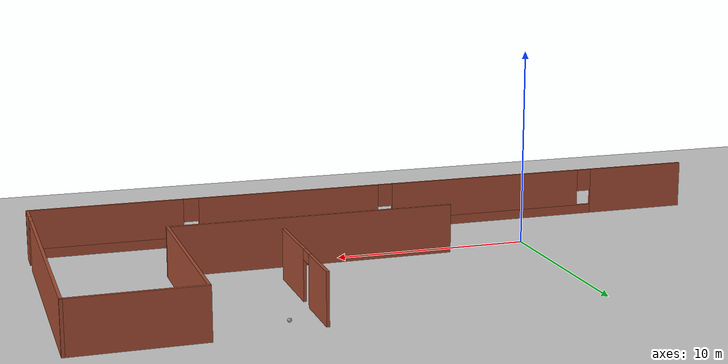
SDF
<sdf version="1.6">
 <world name="default">
  <model name="ground_plane">
   <static>1</static>
   <link name="link">
    <collision name="collision">
     <geometry><plane><normal>0 0 1</normal><size>100 100</size></plane></geometry>
     <surface><friction><ode><mu>100</mu><mu2>50</mu2></ode></friction></surface>
    </collision>
    <visual name="visual">
     <cast_shadows>0</cast_shadows>
     <geometry><plane><normal>0 0 1</normal><size>100 100</size></plane></geometry>
     <material>
      <script><uri>file://media/materials/scripts/gazebo.material</uri><name>Gazebo/Grey</name></script>
     </material>
    </visual>
   </link>
  </model>
  <model name="apartment_model">
   <link name="Wall_16">
    <pose>6.925 3.475 0 0 -0 1.5708</pose>
    <visual name="Wall_16_Visual_0">
     <pose>-1.87856 0 1.25 0 -0 0</pose>
     <geometry><box><size>3.74288 0.15 2.5</size></box></geometry>
     <material>
      <script><uri>file://media/materials/scripts/gazebo.material</uri><name>Gazebo/Bricks</name></script>
      <ambient>1 1 1 1</ambient>
      <diffuse>1 1 1 1</diffuse>
      <specular>0.2 0.2 0.2 1</specular>
      <emissive>0 0 0 1</emissive>
     </material>
    </visual>
    <visual name="Wall_16_Visual_1">
     <pose>2.32144 0 1.25 0 -0 0</pose>
     <geometry><box><size>2.85712 0.15 2.5</size></box></geometry>
     <material>
      <script><uri>file://media/materials/scripts/gazebo.material</uri><name>Gazebo/Bricks</name></script>
      <ambient>1 1 1 1</ambient>
      <diffuse>1 1 1 1</diffuse>
      <specular>0.2 0.2 0.2 1</specular>
      <emissive>0 0 0 1</emissive>
     </material>
    </visual>
    <visual name="Wall_16_Visual_2">
     <pose>0.442879 0 2.25 0 -0 0</pose>
     <geometry><box><size>0.9 0.15 0.5</size></box></geometry>
     <material>
      <script><uri>file://media/materials/scripts/gazebo.material</uri><name>Gazebo/Bricks</name></script>
      <ambient>1 1 1 1</ambient>
      <diffuse>1 1 1 1</diffuse>
      <specular>0.2 0.2 0.2 1</specular>
      <emissive>0 0 0 1</emissive>
     </material>
    </visual>
    <collision name="Wall_16_Collision_0">
     <pose>-1.87856 0 1.25 0 -0 0</pose>
     <geometry><box><size>3.74288 0.15 2.5</size></box></geometry>
     <surface>
      <friction>
       <ode><mu>1</mu><mu2>1</mu2><fdir1>0 0 0</fdir1><slip1>0</slip1><slip2>0</slip2></ode>
       <torsional>
        <coefficient>1</coefficient>
        <patch_radius>0</patch_radius>
        <surface_radius>0</surface_radius>
        <use_patch_radius>1</use_patch_radius>
        <ode><slip>0</slip></ode>
       </torsional>
      </friction>
      <bounce><restitution_coefficient>0</restitution_coefficient><threshold>1e+06</threshold></bounce>
      <contact>
       <collide_without_contact>0</collide_without_contact>
       <collide_without_contact_bitmask>1</collide_without_contact_bitmask>
       <collide_bitmask>1</collide_bitmask>
       <ode>
        <soft_cfm>0</soft_cfm>
        <soft_erp>0.2</soft_erp>
        <kp>1e+13</kp>
        <kd>1</kd>
        <max_vel>0.01</max_vel>
        <min_depth>0</min_depth>
       </ode>
       <bullet>
        <split_impulse>1</split_impulse>
        <split_impulse_penetration_threshold>-0.01</split_impulse_penetration_threshold>
        <soft_cfm>0</soft_cfm>
        <soft_erp>0.2</soft_erp>
        <kp>1e+13</kp>
        <kd>1</kd>
       </bullet>
      </contact>
     </surface>
    </collision>
    <collision name="Wall_16_Collision_1">
     <pose>2.32144 0 1.25 0 -0 0</pose>
     <geometry><box><size>2.85712 0.15 2.5</size></box></geometry>
     <surface>
      <friction>
       <ode><mu>1</mu><mu2>1</mu2><fdir1>0 0 0</fdir1><slip1>0</slip1><slip2>0</slip2></ode>
       <torsional>
        <coefficient>1</coefficient>
        <patch_radius>0</patch_radius>
        <surface_radius>0</surface_radius>
        <use_patch_radius>1</use_patch_radius>
        <ode><slip>0</slip></ode>
       </torsional>
      </friction>
      <bounce><restitution_coefficient>0</restitution_coefficient><threshold>1e+06</threshold></bounce>
      <contact>
       <collide_without_contact>0</collide_without_contact>
       <collide_without_contact_bitmask>1</collide_without_contact_bitmask>
       <collide_bitmask>1</collide_bitmask>
       <ode>
        <soft_cfm>0</soft_cfm>
        <soft_erp>0.2</soft_erp>
        <kp>1e+13</kp>
        <kd>1</kd>
        <max_vel>0.01</max_vel>
        <min_depth>0</min_depth>
       </ode>
       <bullet>
        <split_impulse>1</split_impulse>
        <split_impulse_penetration_threshold>-0.01</split_impulse_penetration_threshold>
        <soft_cfm>0</soft_cfm>
        <soft_erp>0.2</soft_erp>
        <kp>1e+13</kp>
        <kd>1</kd>
       </bullet>
      </contact>
     </surface>
    </collision>
    <collision name="Wall_16_Collision_2">
     <pose>0.442879 0 2.25 0 -0 0</pose>
     <geometry><box><size>0.9 0.15 0.5</size></box></geometry>
     <surface>
      <friction>
       <ode><mu>1</mu><mu2>1</mu2><fdir1>0 0 0</fdir1><slip1>0</slip1><slip2>0</slip2></ode>
       <torsional>
        <coefficient>1</coefficient>
        <patch_radius>0</patch_radius>
        <surface_radius>0</surface_radius>
        <use_patch_radius>1</use_patch_radius>
        <ode><slip>0</slip></ode>
       </torsional>
      </friction>
      <bounce><restitution_coefficient>0</restitution_coefficient><threshold>1e+06</threshold></bounce>
      <contact>
       <collide_without_contact>0</collide_without_contact>
       <collide_without_contact_bitmask>1</collide_without_contact_bitmask>
       <collide_bitmask>1</collide_bitmask>
       <ode>
        <soft_cfm>0</soft_cfm>
        <soft_erp>0.2</soft_erp>
        <kp>1e+13</kp>
        <kd>1</kd>
        <max_vel>0.01</max_vel>
        <min_depth>0</min_depth>
       </ode>
       <bullet>
        <split_impulse>1</split_impulse>
        <split_impulse_penetration_threshold>-0.01</split_impulse_penetration_threshold>
        <soft_cfm>0</soft_cfm>
        <soft_erp>0.2</soft_erp>
        <kp>1e+13</kp>
        <kd>1</kd>
       </bullet>
      </contact>
     </surface>
    </collision>
   </link>
   <link name="Wall_21">
    <pose>18.225 0 0 0 -0 1.5708</pose>
    <visual name="Wall_21_Visual_0">
     <pose>-6.96408 0 1.25 0 -0 0</pose>
     <geometry><box><size>1.32185 0.15 2.5</size></box></geometry>
     <material>
      <script><uri>file://media/materials/scripts/gazebo.material</uri><name>Gazebo/Bricks</name></script>
      <ambient>1 1 1 1</ambient>
      <diffuse>1 1 1 1</diffuse>
      <specular>0.2 0.2 0.2 1</specular>
      <emissive>0 0 0 1</emissive>
     </material>
    </visual>
    <visual name="Wall_21_Visual_2">
     <pose>-5.85315 0 2.25 0 -0 0</pose>
     <geometry><box><size>0.9 0.15 0.5</size></box></geometry>
     <material>
      <script><uri>file://media/materials/scripts/gazebo.material</uri><name>Gazebo/Bricks</name></script>
      <ambient>1 1 1 1</ambient>
      <diffuse>1 1 1 1</diffuse>
      <specular>0.2 0.2 0.2 1</specular>
      <emissive>0 0 0 1</emissive>
     </material>
    </visual>
    <visual name="Wall_21_Visual_1">
     <pose>1.11092 0 1.25 0 -0 0</pose>
     <geometry><box><size>13.0282 0.15 2.5</size></box></geometry>
     <material>
      <script><uri>file://media/materials/scripts/gazebo.material</uri><name>Gazebo/Bricks</name></script>
      <ambient>1 1 1 1</ambient>
      <diffuse>1 1 1 1</diffuse>
      <specular>0.2 0.2 0.2 1</specular>
      <emissive>0 0 0 1</emissive>
     </material>
    </visual>
    <collision name="Wall_21_Collision_0">
     <pose>-6.96408 0 1.25 0 -0 0</pose>
     <geometry><box><size>1.32185 0.15 2.5</size></box></geometry>
     <surface>
      <friction>
       <ode><mu>1</mu><mu2>1</mu2><fdir1>0 0 0</fdir1><slip1>0</slip1><slip2>0</slip2></ode>
       <torsional>
        <coefficient>1</coefficient>
        <patch_radius>0</patch_radius>
        <surface_radius>0</surface_radius>
        <use_patch_radius>1</use_patch_radius>
        <ode><slip>0</slip></ode>
       </torsional>
      </friction>
      <bounce><restitution_coefficient>0</restitution_coefficient><threshold>1e+06</threshold></bounce>
      <contact>
       <collide_without_contact>0</collide_without_contact>
       <collide_without_contact_bitmask>1</collide_without_contact_bitmask>
       <collide_bitmask>1</collide_bitmask>
       <ode>
        <soft_cfm>0</soft_cfm>
        <soft_erp>0.2</soft_erp>
        <kp>1e+13</kp>
        <kd>1</kd>
        <max_vel>0.01</max_vel>
        <min_depth>0</min_depth>
       </ode>
       <bullet>
        <split_impulse>1</split_impulse>
        <split_impulse_penetration_threshold>-0.01</split_impulse_penetration_threshold>
        <soft_cfm>0</soft_cfm>
        <soft_erp>0.2</soft_erp>
        <kp>1e+13</kp>
        <kd>1</kd>
       </bullet>
      </contact>
     </surface>
    </collision>
    <collision name="Wall_21_Collision_1">
     <pose>1.11092 0 1.25 0 -0 0</pose>
     <geometry><box><size>13.0282 0.15 2.5</size></box></geometry>
     <surface>
      <friction>
       <ode><mu>1</mu><mu2>1</mu2><fdir1>0 0 0</fdir1><slip1>0</slip1><slip2>0</slip2></ode>
       <torsional>
        <coefficient>1</coefficient>
        <patch_radius>0</patch_radius>
        <surface_radius>0</surface_radius>
        <use_patch_radius>1</use_patch_radius>
        <ode><slip>0</slip></ode>
       </torsional>
      </friction>
      <bounce><restitution_coefficient>0</restitution_coefficient><threshold>1e+06</threshold></bounce>
      <contact>
       <collide_without_contact>0</collide_without_contact>
       <collide_without_contact_bitmask>1</collide_without_contact_bitmask>
       <collide_bitmask>1</collide_bitmask>
       <ode>
        <soft_cfm>0</soft_cfm>
        <soft_erp>0.2</soft_erp>
        <kp>1e+13</kp>
        <kd>1</kd>
        <max_vel>0.01</max_vel>
        <min_depth>0</min_depth>
       </ode>
       <bullet>
        <split_impulse>1</split_impulse>
        <split_impulse_penetration_threshold>-0.01</split_impulse_penetration_threshold>
        <soft_cfm>0</soft_cfm>
        <soft_erp>0.2</soft_erp>
        <kp>1e+13</kp>
        <kd>1</kd>
       </bullet>
      </contact>
     </surface>
    </collision>
    <collision name="Wall_21_Collision_2">
     <pose>-5.85315 0 2.25 0 -0 0</pose>
     <geometry><box><size>0.9 0.15 0.5</size></box></geometry>
     <surface>
      <friction>
       <ode><mu>1</mu><mu2>1</mu2><fdir1>0 0 0</fdir1><slip1>0</slip1><slip2>0</slip2></ode>
       <torsional>
        <coefficient>1</coefficient>
        <patch_radius>0</patch_radius>
        <surface_radius>0</surface_radius>
        <use_patch_radius>1</use_patch_radius>
        <ode><slip>0</slip></ode>
       </torsional>
      </friction>
      <bounce><restitution_coefficient>0</restitution_coefficient><threshold>1e+06</threshold></bounce>
      <contact>
       <collide_without_contact>0</collide_without_contact>
       <collide_without_contact_bitmask>1</collide_without_contact_bitmask>
       <collide_bitmask>1</collide_bitmask>
       <ode>
        <soft_cfm>0</soft_cfm>
        <soft_erp>0.2</soft_erp>
        <kp>1e+13</kp>
        <kd>1</kd>
        <max_vel>0.01</max_vel>
        <min_depth>0</min_depth>
       </ode>
       <bullet>
        <split_impulse>1</split_impulse>
        <split_impulse_penetration_threshold>-0.01</split_impulse_penetration_threshold>
        <soft_cfm>0</soft_cfm>
        <soft_erp>0.2</soft_erp>
        <kp>1e+13</kp>
        <kd>1</kd>
       </bullet>
      </contact>
     </surface>
    </collision>
   </link>
   <link name="Wall_22">
    <pose>15.175 7.55 0 0 -0 3.14159</pose>
    <visual name="Wall_22_Visual">
     <pose>0 0 1.25 0 -0 0</pose>
     <geometry><box><size>6.25 0.15 2.5</size></box></geometry>
     <material>
      <script><uri>file://media/materials/scripts/gazebo.material</uri><name>Gazebo/Bricks</name></script>
      <ambient>1 1 1 1</ambient>
      <diffuse>1 1 1 1</diffuse>
      <specular>0.2 0.2 0.2 1</specular>
      <emissive>0 0 0 1</emissive>
     </material>
    </visual>
    <collision name="Wall_22_Collision">
     <pose>0 0 1.25 0 -0 0</pose>
     <geometry><box><size>6.25 0.15 2.5</size></box></geometry>
     <surface>
      <friction>
       <ode><mu>1</mu><mu2>1</mu2><fdir1>0 0 0</fdir1><slip1>0</slip1><slip2>0</slip2></ode>
       <torsional>
        <coefficient>1</coefficient>
        <patch_radius>0</patch_radius>
        <surface_radius>0</surface_radius>
        <use_patch_radius>1</use_patch_radius>
        <ode><slip>0</slip></ode>
       </torsional>
      </friction>
      <bounce><restitution_coefficient>0</restitution_coefficient><threshold>1e+06</threshold></bounce>
      <contact>
       <collide_without_contact>0</collide_without_contact>
       <collide_without_contact_bitmask>1</collide_without_contact_bitmask>
       <collide_bitmask>1</collide_bitmask>
       <ode>
        <soft_cfm>0</soft_cfm>
        <soft_erp>0.2</soft_erp>
        <kp>1e+13</kp>
        <kd>1</kd>
        <max_vel>0.01</max_vel>
        <min_depth>0</min_depth>
       </ode>
       <bullet>
        <split_impulse>1</split_impulse>
        <split_impulse_penetration_threshold>-0.01</split_impulse_penetration_threshold>
        <soft_cfm>0</soft_cfm>
        <soft_erp>0.2</soft_erp>
        <kp>1e+13</kp>
        <kd>1</kd>
       </bullet>
      </contact>
     </surface>
    </collision>
   </link>
   <link name="Wall_25">
    <pose>12.125 2.625 0 0 0 -1.5708</pose>
    <visual name="Wall_25_Visual">
     <pose>0 0 1.25 0 -0 0</pose>
     <geometry><box><size>10 0.15 2.5</size></box></geometry>
     <material>
      <script><uri>file://media/materials/scripts/gazebo.material</uri><name>Gazebo/Bricks</name></script>
      <ambient>1 1 1 1</ambient>
      <diffuse>1 1 1 1</diffuse>
      <specular>0.2 0.2 0.2 1</specular>
      <emissive>0 0 0 1</emissive>
     </material>
    </visual>
    <collision name="Wall_25_Collision">
     <pose>0 0 1.25 0 -0 0</pose>
     <geometry><box><size>10 0.15 2.5</size></box></geometry>
     <surface>
      <friction>
       <ode><mu>1</mu><mu2>1</mu2><fdir1>0 0 0</fdir1><slip1>0</slip1><slip2>0</slip2></ode>
       <torsional>
        <coefficient>1</coefficient>
        <patch_radius>0</patch_radius>
        <surface_radius>0</surface_radius>
        <use_patch_radius>1</use_patch_radius>
        <ode><slip>0</slip></ode>
       </torsional>
      </friction>
      <bounce><restitution_coefficient>0</restitution_coefficient><threshold>1e+06</threshold></bounce>
      <contact>
       <collide_without_contact>0</collide_without_contact>
       <collide_without_contact_bitmask>1</collide_without_contact_bitmask>
       <collide_bitmask>1</collide_bitmask>
       <ode>
        <soft_cfm>0</soft_cfm>
        <soft_erp>0.2</soft_erp>
        <kp>1e+13</kp>
        <kd>1</kd>
        <max_vel>0.01</max_vel>
        <min_depth>0</min_depth>
       </ode>
       <bullet>
        <split_impulse>1</split_impulse>
        <split_impulse_penetration_threshold>-0.01</split_impulse_penetration_threshold>
        <soft_cfm>0</soft_cfm>
        <soft_erp>0.2</soft_erp>
        <kp>1e+13</kp>
        <kd>1</kd>
       </bullet>
      </contact>
     </surface>
    </collision>
   </link>
   <link name="Wall_26">
    <pose>4.95 -2.3 0 0 -0 3.14159</pose>
    <visual name="Wall_26_Visual">
     <pose>0 0 1.25 0 -0 0</pose>
     <geometry><box><size>14.5 0.15 2.5</size></box></geometry>
     <material>
      <script><uri>file://media/materials/scripts/gazebo.material</uri><name>Gazebo/Bricks</name></script>
      <ambient>1 1 1 1</ambient>
      <diffuse>1 1 1 1</diffuse>
      <specular>0.2 0.2 0.2 1</specular>
      <emissive>0 0 0 1</emissive>
     </material>
    </visual>
    <collision name="Wall_26_Collision">
     <pose>0 0 1.25 0 -0 0</pose>
     <geometry><box><size>14.5 0.15 2.5</size></box></geometry>
     <surface>
      <friction>
       <ode><mu>1</mu><mu2>1</mu2><fdir1>0 0 0</fdir1><slip1>0</slip1><slip2>0</slip2></ode>
       <torsional>
        <coefficient>1</coefficient>
        <patch_radius>0</patch_radius>
        <surface_radius>0</surface_radius>
        <use_patch_radius>1</use_patch_radius>
        <ode><slip>0</slip></ode>
       </torsional>
      </friction>
      <bounce><restitution_coefficient>0</restitution_coefficient><threshold>1e+06</threshold></bounce>
      <contact>
       <collide_without_contact>0</collide_without_contact>
       <collide_without_contact_bitmask>1</collide_without_contact_bitmask>
       <collide_bitmask>1</collide_bitmask>
       <ode>
        <soft_cfm>0</soft_cfm>
        <soft_erp>0.2</soft_erp>
        <kp>1e+13</kp>
        <kd>1</kd>
        <max_vel>0.01</max_vel>
        <min_depth>0</min_depth>
       </ode>
       <bullet>
        <split_impulse>1</split_impulse>
        <split_impulse_penetration_threshold>-0.01</split_impulse_penetration_threshold>
        <soft_cfm>0</soft_cfm>
        <soft_erp>0.2</soft_erp>
        <kp>1e+13</kp>
        <kd>1</kd>
       </bullet>
      </contact>
     </surface>
    </collision>
   </link>
   <link name="Wall_29">
    <pose>0 -7.55 0 0 -0 0</pose>
    <visual name="Wall_29_Visual_0">
     <pose>-15.4905 0 1.25 0 -0 0</pose>
     <geometry><box><size>5.61904 0.15 2.5</size></box></geometry>
     <material>
      <script><uri>file://media/materials/scripts/gazebo.material</uri><name>Gazebo/Bricks</name></script>
      <ambient>1 1 1 1</ambient>
      <diffuse>1 1 1 1</diffuse>
      <specular>0.2 0.2 0.2 1</specular>
      <emissive>0 0 0 1</emissive>
     </material>
    </visual>
    <visual name="Wall_29_Visual_1">
     <pose>2.80952 0 0.25 0 -0 0</pose>
     <geometry><box><size>30.981 0.15 0.5</size></box></geometry>
     <material>
      <script><uri>file://media/materials/scripts/gazebo.material</uri><name>Gazebo/Bricks</name></script>
      <ambient>1 1 1 1</ambient>
      <diffuse>1 1 1 1</diffuse>
      <specular>0.2 0.2 0.2 1</specular>
      <emissive>0 0 0 1</emissive>
     </material>
    </visual>
    <visual name="Wall_29_Visual_3">
     <pose>4.73149 0 1.5 0 -0 0</pose>
     <geometry><box><size>9.72127 0.15 2</size></box></geometry>
     <material>
      <script><uri>file://media/materials/scripts/gazebo.material</uri><name>Gazebo/Bricks</name></script>
      <ambient>1 1 1 1</ambient>
      <diffuse>1 1 1 1</diffuse>
      <specular>0.2 0.2 0.2 1</specular>
      <emissive>0 0 0 1</emissive>
     </material>
    </visual>
    <visual name="Wall_29_Visual_2">
     <pose>-6.40505 0 1.5 0 -0 0</pose>
     <geometry><box><size>10.9518 0.15 2</size></box></geometry>
     <material>
      <script><uri>file://media/materials/scripts/gazebo.material</uri><name>Gazebo/Bricks</name></script>
      <ambient>1 1 1 1</ambient>
      <diffuse>1 1 1 1</diffuse>
      <specular>0.2 0.2 0.2 1</specular>
      <emissive>0 0 0 1</emissive>
     </material>
    </visual>
    <visual name="Wall_29_Visual_4">
     <pose>14.3461 0 1.5 0 -0 0</pose>
     <geometry><box><size>7.90787 0.15 2</size></box></geometry>
     <material>
      <script><uri>file://media/materials/scripts/gazebo.material</uri><name>Gazebo/Bricks</name></script>
      <ambient>1 1 1 1</ambient>
      <diffuse>1 1 1 1</diffuse>
      <specular>0.2 0.2 0.2 1</specular>
      <emissive>0 0 0 1</emissive>
     </material>
    </visual>
    <visual name="Wall_29_Visual_5">
     <pose>-12.281 0 1.9 0 -0 0</pose>
     <geometry><box><size>0.8 0.15 1.2</size></box></geometry>
     <material>
      <script><uri>file://media/materials/scripts/gazebo.material</uri><name>Gazebo/Bricks</name></script>
      <ambient>1 1 1 1</ambient>
      <diffuse>1 1 1 1</diffuse>
      <specular>0.2 0.2 0.2 1</specular>
      <emissive>0 0 0 1</emissive>
     </material>
    </visual>
    <visual name="Wall_29_Visual_6">
     <pose>-0.529139 0 1.9 0 -0 0</pose>
     <geometry><box><size>0.8 0.15 1.2</size></box></geometry>
     <material>
      <script><uri>file://media/materials/scripts/gazebo.material</uri><name>Gazebo/Bricks</name></script>
      <ambient>1 1 1 1</ambient>
      <diffuse>1 1 1 1</diffuse>
      <specular>0.2 0.2 0.2 1</specular>
      <emissive>0 0 0 1</emissive>
     </material>
    </visual>
    <visual name="Wall_29_Visual_7">
     <pose>9.99213 0 1.9 0 -0 0</pose>
     <geometry><box><size>0.8 0.15 1.2</size></box></geometry>
     <material>
      <script><uri>file://media/materials/scripts/gazebo.material</uri><name>Gazebo/Bricks</name></script>
      <ambient>1 1 1 1</ambient>
      <diffuse>1 1 1 1</diffuse>
      <specular>0.2 0.2 0.2 1</specular>
      <emissive>0 0 0 1</emissive>
     </material>
    </visual>
    <collision name="Wall_29_Collision_0">
     <pose>-15.4905 0 1.25 0 -0 0</pose>
     <geometry><box><size>5.61904 0.15 2.5</size></box></geometry>
     <surface>
      <friction>
       <ode><mu>1</mu><mu2>1</mu2><fdir1>0 0 0</fdir1><slip1>0</slip1><slip2>0</slip2></ode>
       <torsional>
        <coefficient>1</coefficient>
        <patch_radius>0</patch_radius>
        <surface_radius>0</surface_radius>
        <use_patch_radius>1</use_patch_radius>
        <ode><slip>0</slip></ode>
       </torsional>
      </friction>
      <bounce><restitution_coefficient>0</restitution_coefficient><threshold>1e+06</threshold></bounce>
      <contact>
       <collide_without_contact>0</collide_without_contact>
       <collide_without_contact_bitmask>1</collide_without_contact_bitmask>
       <collide_bitmask>1</collide_bitmask>
       <ode>
        <soft_cfm>0</soft_cfm>
        <soft_erp>0.2</soft_erp>
        <kp>1e+13</kp>
        <kd>1</kd>
        <max_vel>0.01</max_vel>
        <min_depth>0</min_depth>
       </ode>
       <bullet>
        <split_impulse>1</split_impulse>
        <split_impulse_penetration_threshold>-0.01</split_impulse_penetration_threshold>
        <soft_cfm>0</soft_cfm>
        <soft_erp>0.2</soft_erp>
        <kp>1e+13</kp>
        <kd>1</kd>
       </bullet>
      </contact>
     </surface>
    </collision>
    <collision name="Wall_29_Collision_1">
     <pose>2.80952 0 0.25 0 -0 0</pose>
     <geometry><box><size>30.981 0.15 0.5</size></box></geometry>
     <surface>
      <friction>
       <ode><mu>1</mu><mu2>1</mu2><fdir1>0 0 0</fdir1><slip1>0</slip1><slip2>0</slip2></ode>
       <torsional>
        <coefficient>1</coefficient>
        <patch_radius>0</patch_radius>
        <surface_radius>0</surface_radius>
        <use_patch_radius>1</use_patch_radius>
        <ode><slip>0</slip></ode>
       </torsional>
      </friction>
      <bounce><restitution_coefficient>0</restitution_coefficient><threshold>1e+06</threshold></bounce>
      <contact>
       <collide_without_contact>0</collide_without_contact>
       <collide_without_contact_bitmask>1</collide_without_contact_bitmask>
       <collide_bitmask>1</collide_bitmask>
       <ode>
        <soft_cfm>0</soft_cfm>
        <soft_erp>0.2</soft_erp>
        <kp>1e+13</kp>
        <kd>1</kd>
        <max_vel>0.01</max_vel>
        <min_depth>0</min_depth>
       </ode>
       <bullet>
        <split_impulse>1</split_impulse>
        <split_impulse_penetration_threshold>-0.01</split_impulse_penetration_threshold>
        <soft_cfm>0</soft_cfm>
        <soft_erp>0.2</soft_erp>
        <kp>1e+13</kp>
        <kd>1</kd>
       </bullet>
      </contact>
     </surface>
    </collision>
    <collision name="Wall_29_Collision_2">
     <pose>-6.40505 0 1.5 0 -0 0</pose>
     <geometry><box><size>10.9518 0.15 2</size></box></geometry>
     <surface>
      <friction>
       <ode><mu>1</mu><mu2>1</mu2><fdir1>0 0 0</fdir1><slip1>0</slip1><slip2>0</slip2></ode>
       <torsional>
        <coefficient>1</coefficient>
        <patch_radius>0</patch_radius>
        <surface_radius>0</surface_radius>
        <use_patch_radius>1</use_patch_radius>
        <ode><slip>0</slip></ode>
       </torsional>
      </friction>
      <bounce><restitution_coefficient>0</restitution_coefficient><threshold>1e+06</threshold></bounce>
      <contact>
       <collide_without_contact>0</collide_without_contact>
       <collide_without_contact_bitmask>1</collide_without_contact_bitmask>
       <collide_bitmask>1</collide_bitmask>
       <ode>
        <soft_cfm>0</soft_cfm>
        <soft_erp>0.2</soft_erp>
        <kp>1e+13</kp>
        <kd>1</kd>
        <max_vel>0.01</max_vel>
        <min_depth>0</min_depth>
       </ode>
       <bullet>
        <split_impulse>1</split_impulse>
        <split_impulse_penetration_threshold>-0.01</split_impulse_penetration_threshold>
        <soft_cfm>0</soft_cfm>
        <soft_erp>0.2</soft_erp>
        <kp>1e+13</kp>
        <kd>1</kd>
       </bullet>
      </contact>
     </surface>
    </collision>
    <collision name="Wall_29_Collision_4">
     <pose>14.3461 0 1.5 0 -0 0</pose>
     <geometry><box><size>7.90787 0.15 2</size></box></geometry>
     <surface>
      <friction>
       <ode><mu>1</mu><mu2>1</mu2><fdir1>0 0 0</fdir1><slip1>0</slip1><slip2>0</slip2></ode>
       <torsional>
        <coefficient>1</coefficient>
        <patch_radius>0</patch_radius>
        <surface_radius>0</surface_radius>
        <use_patch_radius>1</use_patch_radius>
        <ode><slip>0</slip></ode>
       </torsional>
      </friction>
      <bounce><restitution_coefficient>0</restitution_coefficient><threshold>1e+06</threshold></bounce>
      <contact>
       <collide_without_contact>0</collide_without_contact>
       <collide_without_contact_bitmask>1</collide_without_contact_bitmask>
       <collide_bitmask>1</collide_bitmask>
       <ode>
        <soft_cfm>0</soft_cfm>
        <soft_erp>0.2</soft_erp>
        <kp>1e+13</kp>
        <kd>1</kd>
        <max_vel>0.01</max_vel>
        <min_depth>0</min_depth>
       </ode>
       <bullet>
        <split_impulse>1</split_impulse>
        <split_impulse_penetration_threshold>-0.01</split_impulse_penetration_threshold>
        <soft_cfm>0</soft_cfm>
        <soft_erp>0.2</soft_erp>
        <kp>1e+13</kp>
        <kd>1</kd>
       </bullet>
      </contact>
     </surface>
    </collision>
    <collision name="Wall_29_Collision_3">
     <pose>4.73149 0 1.5 0 -0 0</pose>
     <geometry><box><size>9.72127 0.15 2</size></box></geometry>
     <surface>
      <friction>
       <ode><mu>1</mu><mu2>1</mu2><fdir1>0 0 0</fdir1><slip1>0</slip1><slip2>0</slip2></ode>
       <torsional>
        <coefficient>1</coefficient>
        <patch_radius>0</patch_radius>
        <surface_radius>0</surface_radius>
        <use_patch_radius>1</use_patch_radius>
        <ode><slip>0</slip></ode>
       </torsional>
      </friction>
      <bounce><restitution_coefficient>0</restitution_coefficient><threshold>1e+06</threshold></bounce>
      <contact>
       <collide_without_contact>0</collide_without_contact>
       <collide_without_contact_bitmask>1</collide_without_contact_bitmask>
       <collide_bitmask>1</collide_bitmask>
       <ode>
        <soft_cfm>0</soft_cfm>
        <soft_erp>0.2</soft_erp>
        <kp>1e+13</kp>
        <kd>1</kd>
        <max_vel>0.01</max_vel>
        <min_depth>0</min_depth>
       </ode>
       <bullet>
        <split_impulse>1</split_impulse>
        <split_impulse_penetration_threshold>-0.01</split_impulse_penetration_threshold>
        <soft_cfm>0</soft_cfm>
        <soft_erp>0.2</soft_erp>
        <kp>1e+13</kp>
        <kd>1</kd>
       </bullet>
      </contact>
     </surface>
    </collision>
    <collision name="Wall_29_Collision_5">
     <pose>-12.281 0 1.9 0 -0 0</pose>
     <geometry><box><size>0.8 0.15 1.2</size></box></geometry>
     <surface>
      <friction>
       <ode><mu>1</mu><mu2>1</mu2><fdir1>0 0 0</fdir1><slip1>0</slip1><slip2>0</slip2></ode>
       <torsional>
        <coefficient>1</coefficient>
        <patch_radius>0</patch_radius>
        <surface_radius>0</surface_radius>
        <use_patch_radius>1</use_patch_radius>
        <ode><slip>0</slip></ode>
       </torsional>
      </friction>
      <bounce><restitution_coefficient>0</restitution_coefficient><threshold>1e+06</threshold></bounce>
      <contact>
       <collide_without_contact>0</collide_without_contact>
       <collide_without_contact_bitmask>1</collide_without_contact_bitmask>
       <collide_bitmask>1</collide_bitmask>
       <ode>
        <soft_cfm>0</soft_cfm>
        <soft_erp>0.2</soft_erp>
        <kp>1e+13</kp>
        <kd>1</kd>
        <max_vel>0.01</max_vel>
        <min_depth>0</min_depth>
       </ode>
       <bullet>
        <split_impulse>1</split_impulse>
        <split_impulse_penetration_threshold>-0.01</split_impulse_penetration_threshold>
        <soft_cfm>0</soft_cfm>
        <soft_erp>0.2</soft_erp>
        <kp>1e+13</kp>
        <kd>1</kd>
       </bullet>
      </contact>
     </surface>
    </collision>
    <collision name="Wall_29_Collision_6">
     <pose>-0.529139 0 1.9 0 -0 0</pose>
     <geometry><box><size>0.8 0.15 1.2</size></box></geometry>
     <surface>
      <friction>
       <ode><mu>1</mu><mu2>1</mu2><fdir1>0 0 0</fdir1><slip1>0</slip1><slip2>0</slip2></ode>
       <torsional>
        <coefficient>1</coefficient>
        <patch_radius>0</patch_radius>
        <surface_radius>0</surface_radius>
        <use_patch_radius>1</use_patch_radius>
        <ode><slip>0</slip></ode>
       </torsional>
      </friction>
      <bounce><restitution_coefficient>0</restitution_coefficient><threshold>1e+06</threshold></bounce>
      <contact>
       <collide_without_contact>0</collide_without_contact>
       <collide_without_contact_bitmask>1</collide_without_contact_bitmask>
       <collide_bitmask>1</collide_bitmask>
       <ode>
        <soft_cfm>0</soft_cfm>
        <soft_erp>0.2</soft_erp>
        <kp>1e+13</kp>
        <kd>1</kd>
        <max_vel>0.01</max_vel>
        <min_depth>0</min_depth>
       </ode>
       <bullet>
        <split_impulse>1</split_impulse>
        <split_impulse_penetration_threshold>-0.01</split_impulse_penetration_threshold>
        <soft_cfm>0</soft_cfm>
        <soft_erp>0.2</soft_erp>
        <kp>1e+13</kp>
        <kd>1</kd>
       </bullet>
      </contact>
     </surface>
    </collision>
    <collision name="Wall_29_Collision_7">
     <pose>9.99213 0 1.9 0 -0 0</pose>
     <geometry><box><size>0.8 0.15 1.2</size></box></geometry>
     <surface>
      <friction>
       <ode><mu>1</mu><mu2>1</mu2><fdir1>0 0 0</fdir1><slip1>0</slip1><slip2>0</slip2></ode>
       <torsional>
        <coefficient>1</coefficient>
        <patch_radius>0</patch_radius>
        <surface_radius>0</surface_radius>
        <use_patch_radius>1</use_patch_radius>
        <ode><slip>0</slip></ode>
       </torsional>
      </friction>
      <bounce><restitution_coefficient>0</restitution_coefficient><threshold>1e+06</threshold></bounce>
      <contact>
       <collide_without_contact>0</collide_without_contact>
       <collide_without_contact_bitmask>1</collide_without_contact_bitmask>
       <collide_bitmask>1</collide_bitmask>
       <ode>
        <soft_cfm>0</soft_cfm>
        <soft_erp>0.2</soft_erp>
        <kp>1e+13</kp>
        <kd>1</kd>
        <max_vel>0.01</max_vel>
        <min_depth>0</min_depth>
       </ode>
       <bullet>
        <split_impulse>1</split_impulse>
        <split_impulse_penetration_threshold>-0.01</split_impulse_penetration_threshold>
        <soft_cfm>0</soft_cfm>
        <soft_erp>0.2</soft_erp>
        <kp>1e+13</kp>
        <kd>1</kd>
       </bullet>
      </contact>
     </surface>
    </collision>
   </link>
   <static>1</static>
   <pose>6.54088 2.94888 0 0 -0 0</pose>
  </model>
  <model name="my_ball">
   <link name="link_0">
    <inertial>
     <mass>1</mass>
     <inertia><ixx>0.1</ixx><ixy>0</ixy><ixz>0</ixz><iyy>0.1</iyy><iyz>0</iyz><izz>0.1</izz></inertia>
    </inertial>
    <visual name="visual">
     <geometry><sphere><radius>0.1</radius></sphere></geometry>
     <material>
      <lighting>1</lighting>
      <script><uri>file://media/materials/scripts/gazebo.material</uri><name>Gazebo/Grey</name></script>
      <ambient>1 1 1 1</ambient>
      <diffuse>1 1 1 1</diffuse>
      <specular>1 1 1 1</specular>
      <emissive>1 1 1 1</emissive>
      <shader type="vertex"><normal_map>__default__</normal_map></shader>
     </material>
    </visual>
    <collision name="collision">
     <geometry><sphere><radius>0.1</radius></sphere></geometry>
     <surface>
      <friction>
       <ode><mu>1</mu><mu2>1</mu2><fdir1>0 0 0</fdir1><slip1>0</slip1><slip2>0</slip2></ode>
       <torsional>
        <coefficient>1</coefficient>
        <patch_radius>0</patch_radius>
        <surface_radius>0</surface_radius>
        <use_patch_radius>1</use_patch_radius>
        <ode><slip>0</slip></ode>
       </torsional>
      </friction>
      <bounce><restitution_coefficient>0</restitution_coefficient><threshold>1e+06</threshold></bounce>
      <contact>
       <collide_without_contact>0</collide_without_contact>
       <collide_without_contact_bitmask>1</collide_without_contact_bitmask>
       <collide_bitmask>1</collide_bitmask>
       <ode>
        <soft_cfm>0</soft_cfm>
        <soft_erp>0.2</soft_erp>
        <kp>1e+13</kp>
        <kd>1</kd>
        <max_vel>0.01</max_vel>
        <min_depth>0</min_depth>
       </ode>
       <bullet>
        <split_impulse>1</split_impulse>
        <split_impulse_penetration_threshold>-0.01</split_impulse_penetration_threshold>
        <soft_cfm>0</soft_cfm>
        <soft_erp>0.2</soft_erp>
        <kp>1e+13</kp>
        <kd>1</kd>
       </bullet>
      </contact>
     </surface>
    </collision>
   </link>
   <static>0</static>
   <pose>14.8847 9.03417 0.1 0 -0 0</pose>
  </model>
 </world>
</sdf>
